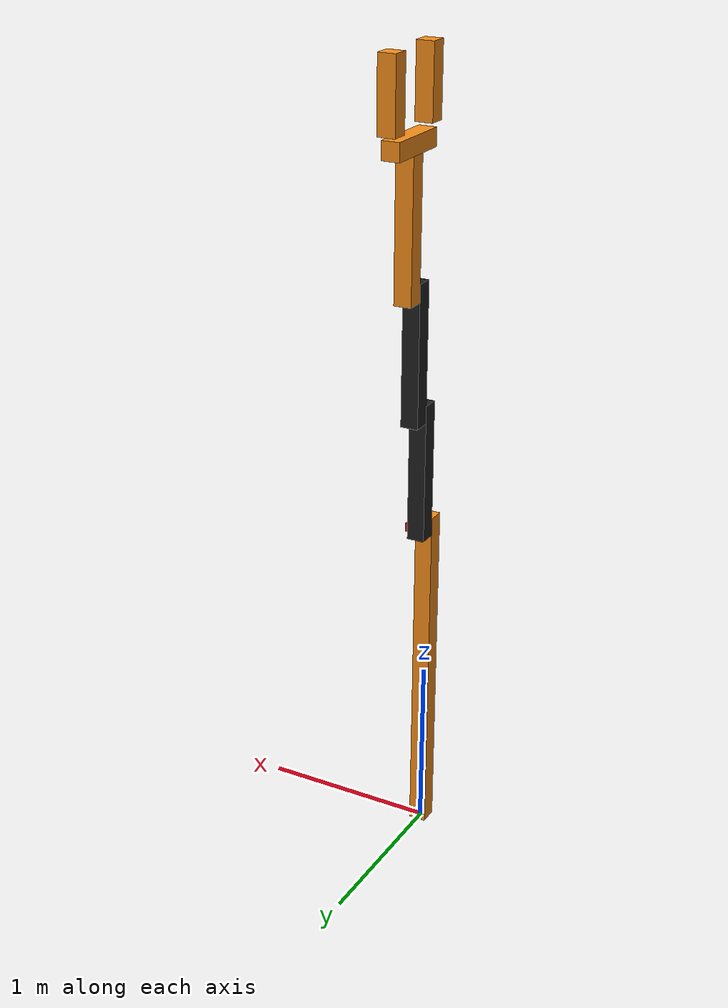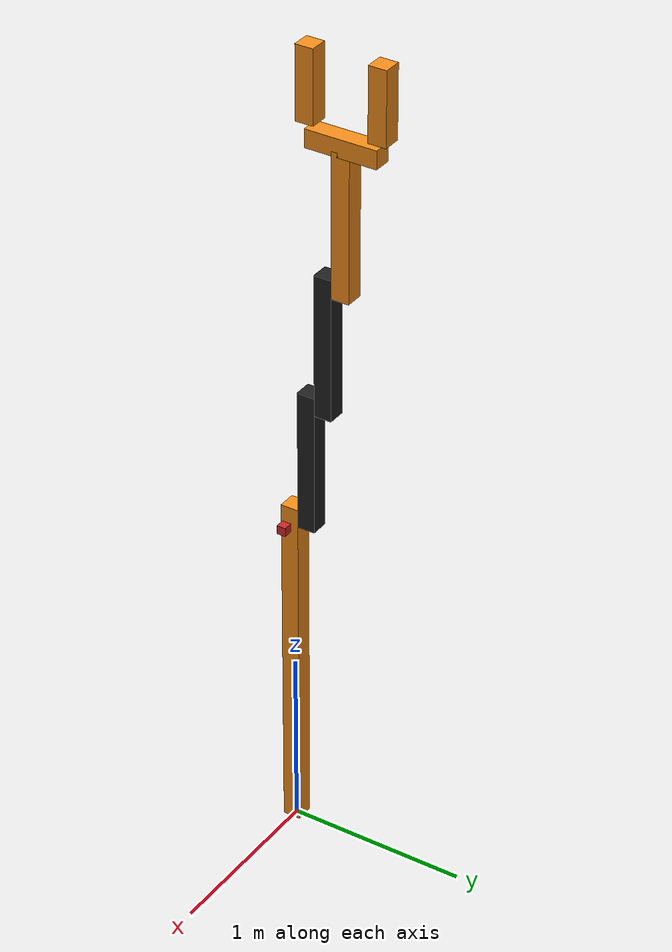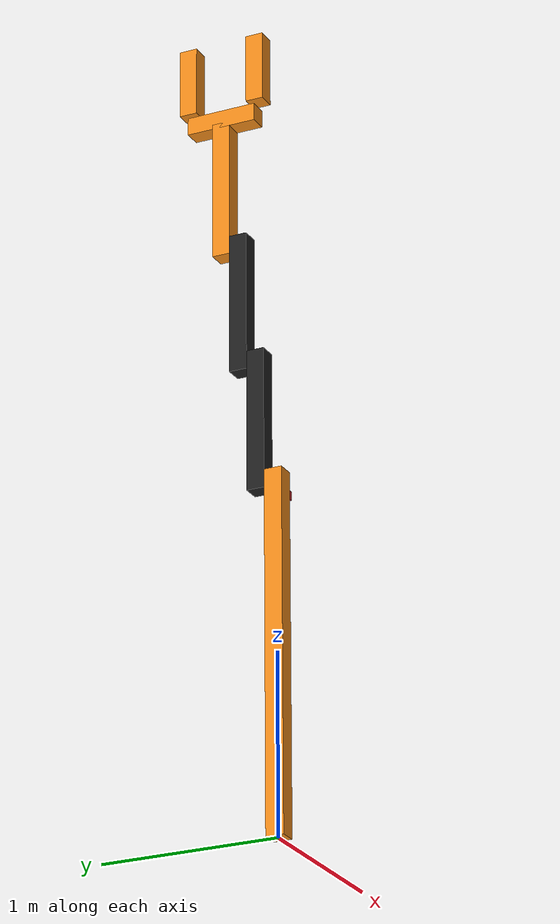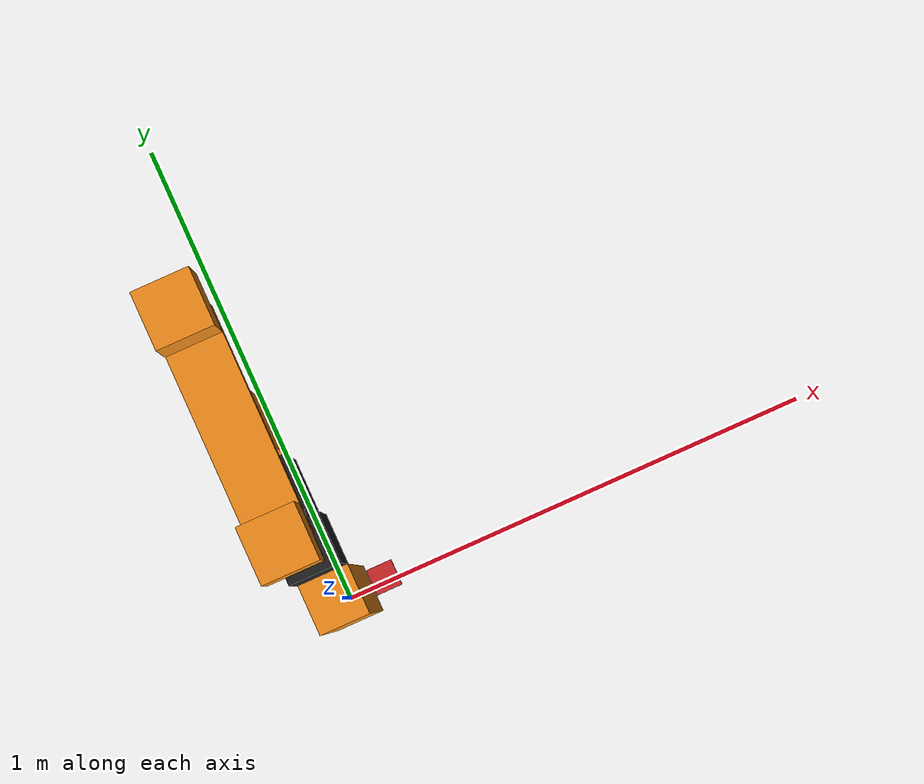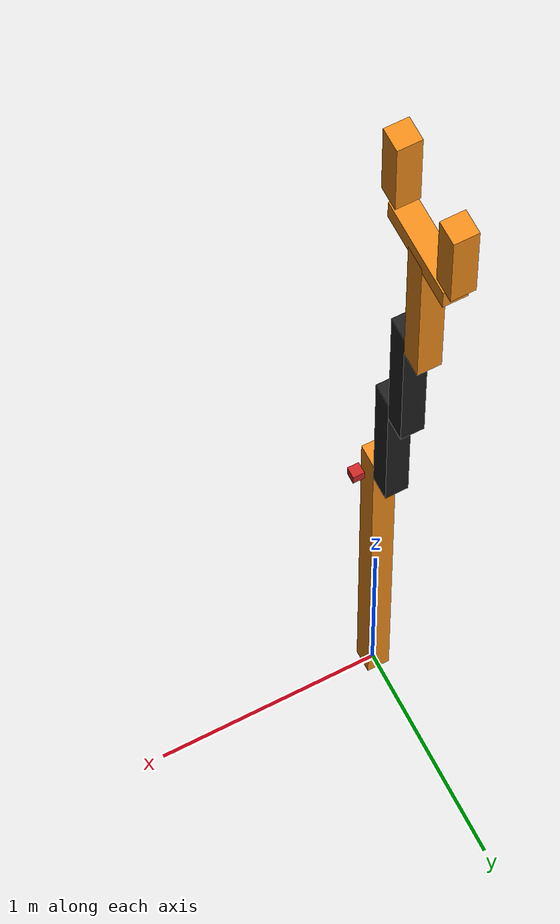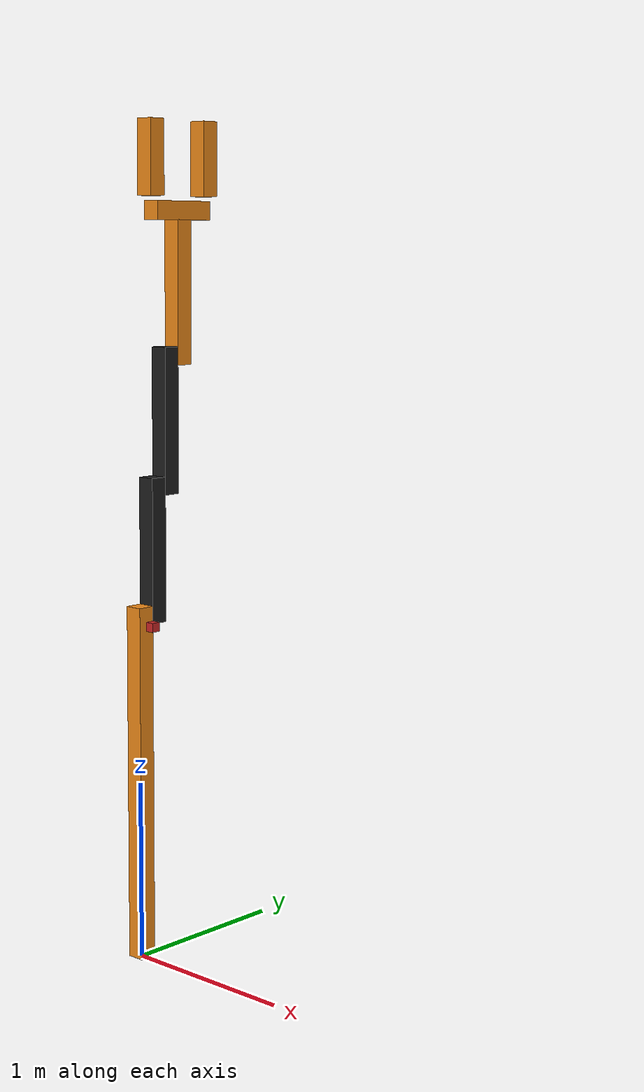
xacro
<?xml version="1.0"?>
<!-- Revolute-Revolute Manipulator -->
<robot name="rrbot" xmlns:xacro="http://www.ros.org/wiki/xacro">

  <!-- Constants for robot dimensions -->
  <xacro:property name="PI" value="3.1415926535897931"/>
  <xacro:property name="width" value="0.1" /> <!-- Square dimensions (widthxwidth) of beams -->
  <xacro:property name="height1" value="2" /> <!-- Link 1 -->
  <xacro:property name="height2" value="0.8" /> <!-- Link 2 -->
  <xacro:property name="height3" value="0.8" /> <!-- Link 3 -->
  <xacro:property name="height4" value="0.8" /> <!-- Link 4 -->
  <xacro:property name="camera_link" value="0.05" /> <!-- Size of square 'camera' box -->
  <xacro:property name="axel_offset" value="0.05" /> <!-- Space btw top of beam and the each joint -->

  <!-- Import all Gazebo-customization elements, including Gazebo colors -->
  <xacro:include filename="$(find rrbot_description)/urdf/rrbot.gazebo" />
  <!-- Import Rviz colors -->
  <xacro:include filename="$(find rrbot_description)/urdf/materials.xacro" />

  <!-- Used for fixing robot to Gazebo 'base_link' -->
  <link name="world"/>

  <joint name="fixed" type="fixed">
    <parent link="world"/>
    <child link="link1"/>
  </joint>

  <!-- Base Link -->
  <link name="link1">
    <collision>
      <origin xyz="0 0 ${height1/2}" rpy="0 0 0"/>
      <geometry>
	<box size="${width} ${width} ${height1}"/>
      </geometry>
    </collision>

    <visual>
      <origin xyz="0 0 ${height1/2}" rpy="0 0 0"/>
      <geometry>
	<box size="${width} ${width} ${height1}"/>
      </geometry>
      <material name="orange"/>
    </visual>

    <inertial>
      <origin xyz="0 0 ${height1/2}" rpy="0 0 0"/>
      <mass value="1"/>
      <inertia
	  ixx="1.0" ixy="0.0" ixz="0.0"
	  iyy="1.0" iyz="0.0"
	  izz="1.0"/>
    </inertial>
  </link>

  <joint name="joint1" type="continuous">
    <parent link="link1"/>
    <child link="link2"/>
    <origin xyz="0 ${width} ${height1 - axel_offset}" rpy="0 0 0"/>
    <axis xyz="0 1 0"/>
	<limit effort="1000" velocity="2.0" lower="${-PI*1.25}" upper="${+PI*1.25}" />
    <dynamics damping="10"/>
  </joint>

  <!-- Middle Link -->
  <link name="link2">
    <collision>
      <origin xyz="0 0 ${height2/2 - axel_offset}" rpy="0 0 0"/>
      <geometry>
	<box size="${width} ${width} ${height2}"/>
      </geometry>
    </collision>

    <visual>
      <origin xyz="0 0 ${height2/2 - axel_offset}" rpy="0 0 0"/>
      <geometry>
	<box size="${width} ${width} ${height2}"/>
      </geometry>
      <material name="black"/>
    </visual>

    <inertial>
      <origin xyz="0 0 ${height2/2 - axel_offset}" rpy="0 0 0"/>
      <mass value="1"/>
      <inertia
	  ixx="1.0" ixy="0.0" ixz="0.0"
	  iyy="1.0" iyz="0.0"
	  izz="1.0"/>
    </inertial>
  </link>

  <joint name="joint2" type="continuous">
    <parent link="link2"/>
    <child link="link4"/>
    <origin xyz="0 ${width} ${height2 - axel_offset*2}" rpy="0 0 0"/>
    <axis xyz="0 1 0"/>
    <dynamics damping="10"/>
  </joint>

  <!-- Middle Link 2 -->
  <link name="link4">
    <collision>
      <origin xyz="0 0 ${height4/2 - axel_offset}" rpy="0 0 0"/>
      <geometry>
	<box size="${width} ${width} ${height4}"/>
      </geometry>
    </collision>

    <visual>
      <origin xyz="0 0 ${height4/2 - axel_offset}" rpy="0 0 0"/>
      <geometry>
	<box size="${width} ${width} ${height4}"/>
      </geometry>
      <material name="black"/>
    </visual>

    <inertial>
      <origin xyz="0 0 ${height4/2 - axel_offset}" rpy="0 0 0"/>
      <mass value="1"/>
      <inertia
	  ixx="1.0" ixy="0.0" ixz="0.0"
	  iyy="1.0" iyz="0.0"
	  izz="1.0"/>
    </inertial>
  </link>

  <joint name="joint3" type="continuous">
    <parent link="link4"/>
    <child link="link3"/>
    <origin xyz="0 ${width} ${height4 - axel_offset*2}" rpy="0 0 0"/>
    <axis xyz="0 1 0"/>
    <dynamics damping="10"/>
  </joint>

  <!-- Top Link -->
  <link name="link3">
    <collision>
      <origin xyz="0 0 ${height3/2 - axel_offset}" rpy="0 0 0"/>
      <geometry>
	<box size="${width} ${width} ${height3}"/>
      </geometry>
    </collision>

    <visual>
      <origin xyz="0 0 ${height3/2 - axel_offset}" rpy="0 0 0"/>
      <geometry>
	<box size="${width} ${width} ${height3}"/>
      </geometry>
      <material name="orange"/>
    </visual>

    <inertial>
      <origin xyz="0 0 ${height3/2 - axel_offset}" rpy="0 0 0"/>
      <mass value="1"/>
      <inertia
	  ixx="1.0" ixy="0.0" ixz="0.0"
	  iyy="1.0" iyz="0.0"
	  izz="1.0"/>
    </inertial>
  </link>

  <joint name="gripper_palm_joint" type="fixed">
    <axis xyz="0 1 0"/>
    <origin rpy="0 0 0" xyz="0 0 0.475"/>
    <parent link="link3"/>
    <child link="palm"/>
  </joint>

  <link name="palm">
    <collision>
      <origin xyz="0.0 0.0 0.3" rpy="0 0 0"/>
      <geometry>
		<box size="0.1 0.4 0.1"/>
      </geometry>
    </collision>

    <visual>
      <origin xyz="0.0 0.0 0.3" rpy="0 0 0"/>
      <geometry>
	<box size="0.1 0.4 0.1"/>
      </geometry>
      <material name="orange"/>
    </visual>

    <inertial>
      <origin xyz="0.0 0.0 0.2" rpy="0 0 0"/>
      <mass value="0.1"/>
      <inertia
	  ixx="1.0" ixy="0.0" ixz="0.0"
	  iyy="1.0" iyz="0.0"
	  izz="1.0"/>
    </inertial>
  </link>

  <joint name="gripper_left_finger_joint" type="prismatic">
    <axis xyz="0 1 0"/>
    <origin rpy="0 0 0" xyz="0 0 0.475"/>
    <limit effort="1000.0" lower="-0.2" upper="0" velocity="0.5"/>
    <parent link="palm"/>
    <child link="left_finger"/>
    <dynamics damping="10"/>
  </joint>

  <link name="left_finger">
    <collision>
      <origin xyz="0.0 0.2 0.1" rpy="0 0 0"/>
      <geometry>
		<box size="0.1 0.1 0.4"/>
      </geometry>
    </collision>

    <visual>
      <origin xyz="0.0 0.2 0.1" rpy="0 0 0"/>
      <geometry>
		<box size="0.1 0.1 0.4"/>
      </geometry>
      <material name="orange"/>
    </visual>

    <inertial>
      <origin xyz="0.0 0.2 0.1" rpy="0 0 0"/>
      <mass value="0.1"/>
      <inertia
	  ixx="1.0" ixy="0.0" ixz="0.0"
	  iyy="1.0" iyz="0.0"
	  izz="1.0"/>
    </inertial>
  </link>

  <joint name="gripper_right_finger_joint" type="prismatic">
    <axis xyz="0 1 0"/>
    <origin rpy="0 0 0" xyz="0 0 0.475"/>
    <limit effort="1000.0" lower="0" upper="0.2" velocity="0.5"/>
    <parent link="palm"/>
    <child link="right_finger"/>
    <dynamics damping="10"/>
  </joint>

  <link name="right_finger">
    <collision>
      <origin xyz="0.0 -0.2 0.1" rpy="0 0 0"/>
      <geometry>
		<box size="0.1 0.1 0.4"/>
      </geometry>
    </collision>

    <visual>
      <origin xyz="0.0 -0.2 0.1" rpy="0 0 0"/>
      <geometry>
		<box size="0.1 0.1 0.4"/>
      </geometry>
      <material name="orange"/>
    </visual>

    <inertial>
      <origin xyz="0.0 -0.2 0.1" rpy="0 0 0"/>
      <mass value="0.1"/>
      <inertia
	  ixx="1.0" ixy="0.0" ixz="0.0"
	  iyy="1.0" iyz="0.0"
	  izz="1.0"/>
    </inertial>
  </link>

  <joint name="camera_joint" type="continuous">
    <axis xyz="0 1 0" />
    <origin xyz="${camera_link * 2} 0 ${height1 - axel_offset*2}" rpy="0 0 0"/>
    <parent link="link1"/>
    <child link="camera_link"/>
	<limit effort="1000" velocity="2.0" lower="${-PI*1.25}" upper="${+PI*1.25}" />
    <dynamics damping="1"/>
  </joint>

  <!-- Camera      -->
  <link name="camera_link">
    <collision>
      <origin xyz="0 0 0" rpy="0 0 0"/>
      <geometry>
	<box size="${camera_link} ${camera_link} ${camera_link}"/>
      </geometry>
    </collision>

    <visual>
      <origin xyz="0 0 0" rpy="0 0 0"/>
      <geometry>
	<box size="${camera_link} ${camera_link} ${camera_link}"/>
      </geometry>
      <material name="red"/>
    </visual>

    <inertial>
      <mass value="0.1" />
      <origin xyz="0 0 0" rpy="0 0 0"/>
      <inertia ixx="1" ixy="0" ixz="0" iyy="1" iyz="0" izz="1" />
    </inertial>
  </link>

  <transmission name="tran1">
    <type>transmission_interface/SimpleTransmission</type>
    <joint name="joint1">
      <hardwareInterface>EffortJointInterface</hardwareInterface>
    </joint>
    <actuator name="motor1">
      <hardwareInterface>EffortJointInterface</hardwareInterface>
      <mechanicalReduction>1</mechanicalReduction>
    </actuator>
  </transmission>

  <transmission name="tran2">
    <type>transmission_interface/SimpleTransmission</type>
    <joint name="joint2">
      <hardwareInterface>EffortJointInterface</hardwareInterface>
    </joint>
    <actuator name="motor2">
      <hardwareInterface>EffortJointInterface</hardwareInterface>
      <mechanicalReduction>1</mechanicalReduction>
    </actuator>
  </transmission>

  <transmission name="tran3">
    <type>transmission_interface/SimpleTransmission</type>
    <joint name="joint3">
      <hardwareInterface>EffortJointInterface</hardwareInterface>
    </joint>
    <actuator name="motor3">
      <hardwareInterface>EffortJointInterface</hardwareInterface>
      <mechanicalReduction>1</mechanicalReduction>
    </actuator>
  </transmission>

  <transmission name="tran4">
    <type>transmission_interface/SimpleTransmission</type>
    <joint name="gripper_left_finger_joint">
      <hardwareInterface>EffortJointInterface</hardwareInterface>
    </joint>
    <actuator name="motor4">
      <hardwareInterface>EffortJointInterface</hardwareInterface>
      <mechanicalReduction>1</mechanicalReduction>
    </actuator>
  </transmission>

  <transmission name="tran5">
    <type>transmission_interface/SimpleTransmission</type>
    <joint name="gripper_right_finger_joint">
      <hardwareInterface>EffortJointInterface</hardwareInterface>
    </joint>
    <actuator name="motor5">
      <hardwareInterface>EffortJointInterface</hardwareInterface>
      <mechanicalReduction>1</mechanicalReduction>
    </actuator>
  </transmission>

  <transmission name="tran6">
    <type>transmission_interface/SimpleTransmission</type>
    <joint name="camera_joint">
      <hardwareInterface>EffortJointInterface</hardwareInterface>
    </joint>
    <actuator name="motor6">
      <hardwareInterface>EffortJointInterface</hardwareInterface>
      <mechanicalReduction>1</mechanicalReduction>
    </actuator>
  </transmission>

</robot>
